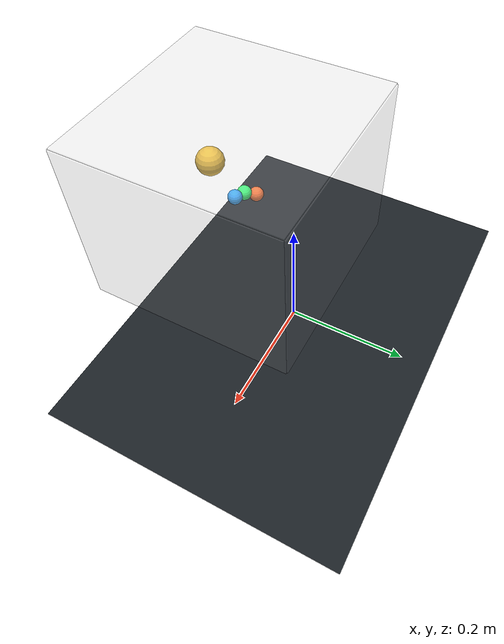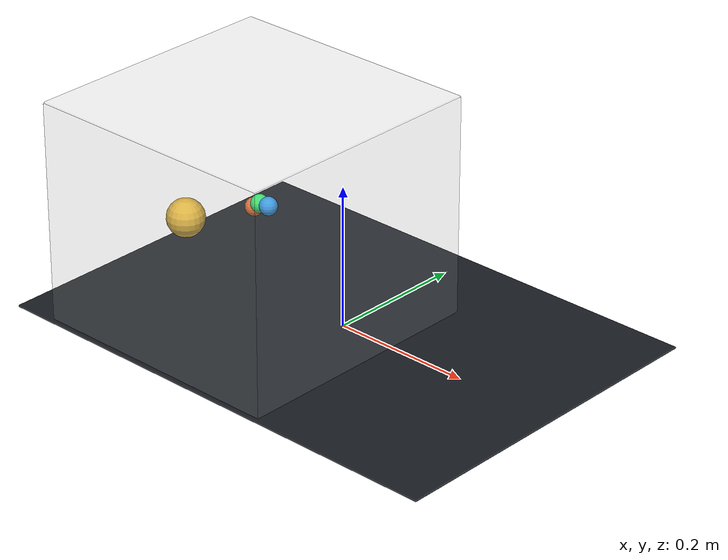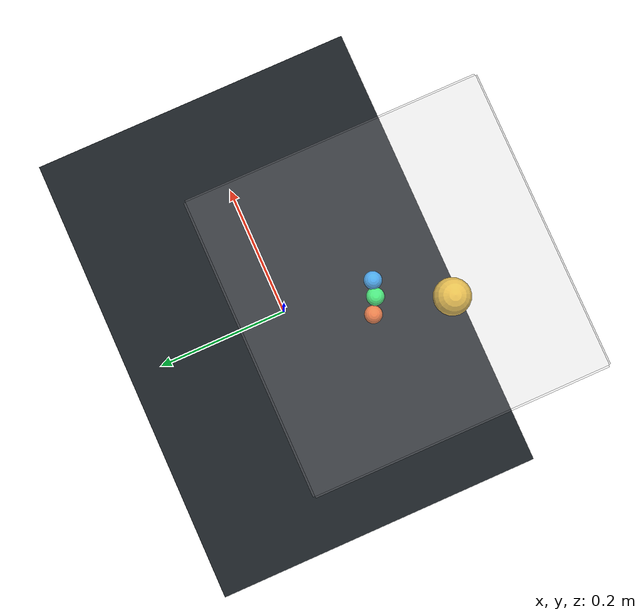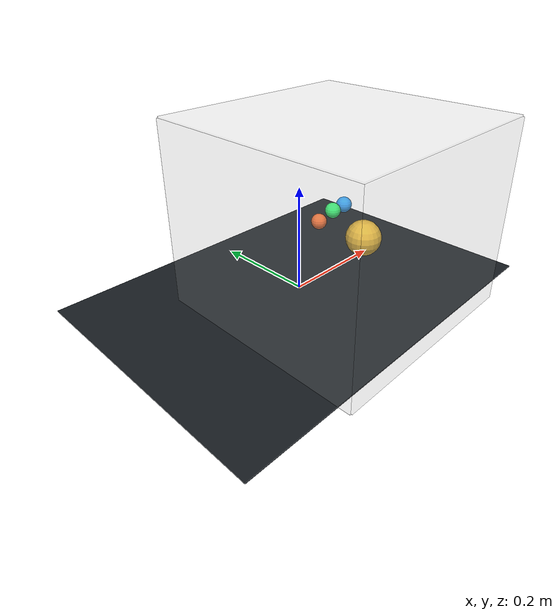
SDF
<sdf version="1.10">
  <world name="zero_g_practice">
    <physics name="1ms" type="ignored">
      <max_step_size>0.005</max_step_size>
      <real_time_factor>1</real_time_factor>
      <real_time_update_rate>500</real_time_update_rate>
    </physics>

    <plugin name="gz::sim::systems::Physics" filename="gz-sim-physics-system"/>
    <plugin name="gz::sim::systems::UserCommands" filename="gz-sim-user-commands-system"/>
    <plugin name="gz::sim::systems::SceneBroadcaster" filename="gz-sim-scene-broadcaster-system"/>
    <plugin name="gz::sim::systems::Contact" filename="gz-sim-contact-system"/>

    <gravity>0 0 0</gravity>
    <magnetic_field>0 0 0</magnetic_field>
    <atmosphere type="adiabatic"/>

    <scene>
      <ambient>0.35 0.38 0.42 1</ambient>
      <background>0.02 0.025 0.035 1</background>
      <shadows>true</shadows>
    </scene>

    <gui>
      <camera name="user_camera">
        <pose>0.6 -0.9 0.55 0 0.42 2.2</pose>
      </camera>
    </gui>

    <light name="work_light" type="directional">
      <pose>0 0 3 0 0 0</pose>
      <cast_shadows>true</cast_shadows>
      <intensity>1.4</intensity>
      <direction>-0.4 0.2 -0.9</direction>
      <diffuse>0.9 0.92 1.0 1</diffuse>
      <specular>0.2 0.2 0.25 1</specular>
    </light>

    <model name="reference_plane">
      <static>true</static>
      <pose>0 0 -0.001 0 0 0</pose>
      <link name="link">
        <visual name="visual">
          <geometry>
            <box>
              <size>0.7 0.5 0.002</size>
            </box>
          </geometry>
          <material>
            <ambient>0.08 0.10 0.12 1</ambient>
            <diffuse>0.10 0.12 0.14 1</diffuse>
            <specular>0.1 0.1 0.1 1</specular>
          </material>
        </visual>
      </link>
    </model>

    <model name="approach_marker">
      <static>true</static>
      <pose>-0.02 -0.115 0.21 0 0 0</pose>
      <link name="link">
        <visual name="visual">
          <geometry>
            <sphere>
              <radius>0.012</radius>
            </sphere>
          </geometry>
          <material>
            <ambient>0.2 0.65 1.0 1</ambient>
            <diffuse>0.2 0.65 1.0 1</diffuse>
          </material>
        </visual>
      </link>
    </model>

    <model name="hold_marker">
      <static>true</static>
      <pose>-0.04 -0.11 0.205 0 0 0</pose>
      <link name="link">
        <visual name="visual">
          <geometry>
            <sphere>
              <radius>0.012</radius>
            </sphere>
          </geometry>
          <material>
            <ambient>0.2 1.0 0.45 1</ambient>
            <diffuse>0.2 1.0 0.45 1</diffuse>
          </material>
        </visual>
      </link>
    </model>

    <model name="retreat_marker">
      <static>true</static>
      <pose>-0.06 -0.10 0.19 0 0 0</pose>
      <link name="link">
        <visual name="visual">
          <geometry>
            <sphere>
              <radius>0.012</radius>
            </sphere>
          </geometry>
          <material>
            <ambient>1.0 0.45 0.2 1</ambient>
            <diffuse>1.0 0.45 0.2 1</diffuse>
          </material>
        </visual>
      </link>
    </model>

    <model name="workspace_bounds">
      <static>true</static>
      <pose>-0.04 -0.12 0.20 0 0 0</pose>
      <link name="link">
        <visual name="x_min">
          <pose>-0.18 0 0 0 0 0</pose>
          <geometry><box><size>0.005 0.36 0.30</size></box></geometry>
          <transparency>0.85</transparency>
        </visual>
        <visual name="x_max">
          <pose>0.18 0 0 0 0 0</pose>
          <geometry><box><size>0.005 0.36 0.30</size></box></geometry>
          <transparency>0.85</transparency>
        </visual>
        <visual name="y_min">
          <pose>0 -0.18 0 0 0 0</pose>
          <geometry><box><size>0.36 0.005 0.30</size></box></geometry>
          <transparency>0.85</transparency>
        </visual>
        <visual name="y_max">
          <pose>0 0.18 0 0 0 0</pose>
          <geometry><box><size>0.36 0.005 0.30</size></box></geometry>
          <transparency>0.85</transparency>
        </visual>
        <visual name="z_min">
          <pose>0 0 -0.15 0 0 0</pose>
          <geometry><box><size>0.36 0.36 0.005</size></box></geometry>
          <transparency>0.85</transparency>
        </visual>
        <visual name="z_max">
          <pose>0 0 0.15 0 0 0</pose>
          <geometry><box><size>0.36 0.36 0.005</size></box></geometry>
          <transparency>0.85</transparency>
        </visual>
      </link>
    </model>

    <model name="floating_sample">
      <static>false</static>
      <pose>-0.08 -0.20 0.205 0 0 0</pose>
      <link name="sample_link">
        <inertial>
          <mass>0.02</mass>
          <inertia>
            <ixx>0.000005</ixx>
            <ixy>0</ixy>
            <ixz>0</ixz>
            <iyy>0.000005</iyy>
            <iyz>0</iyz>
            <izz>0.000005</izz>
          </inertia>
        </inertial>
        <collision name="collision">
          <geometry>
            <sphere>
              <radius>0.025</radius>
            </sphere>
          </geometry>
          <surface>
            <friction>
              <ode>
                <mu>0.2</mu>
                <mu2>0.2</mu2>
              </ode>
            </friction>
            <contact/>
          </surface>
        </collision>
        <visual name="visual">
          <geometry>
            <sphere>
              <radius>0.025</radius>
            </sphere>
          </geometry>
          <material>
            <ambient>0.95 0.75 0.22 1</ambient>
            <diffuse>0.95 0.75 0.22 1</diffuse>
            <specular>0.45 0.4 0.2 1</specular>
          </material>
        </visual>
      </link>
    </model>
  </world>
</sdf>
